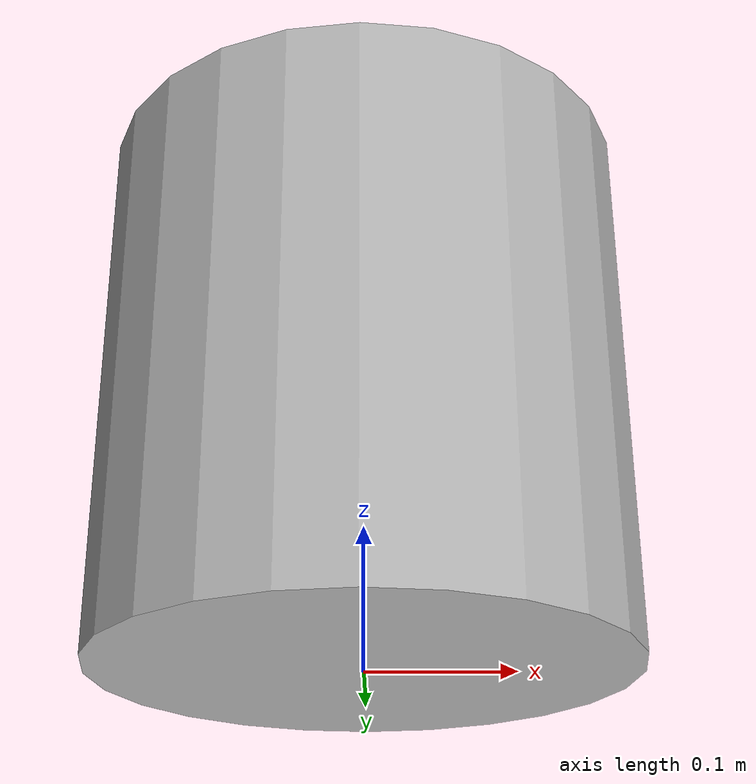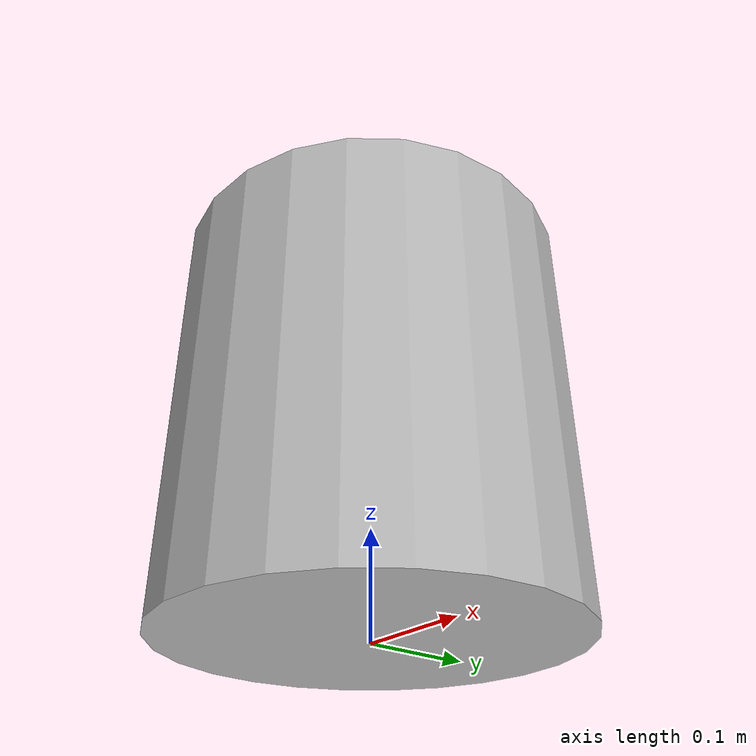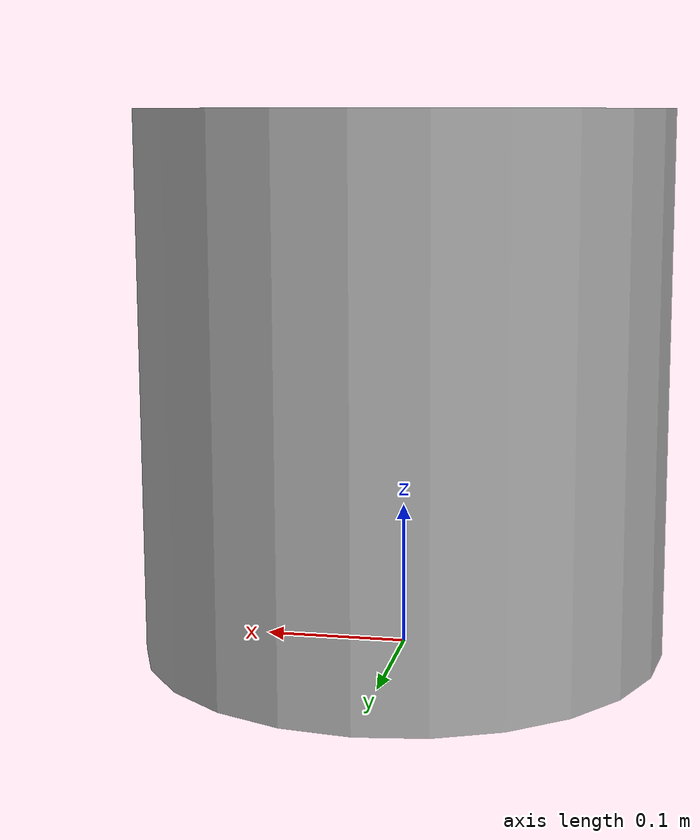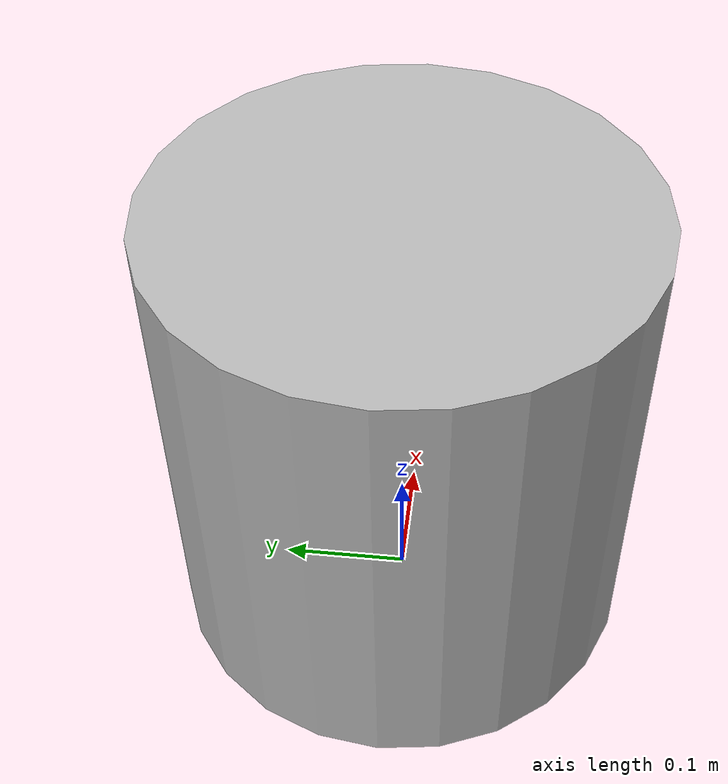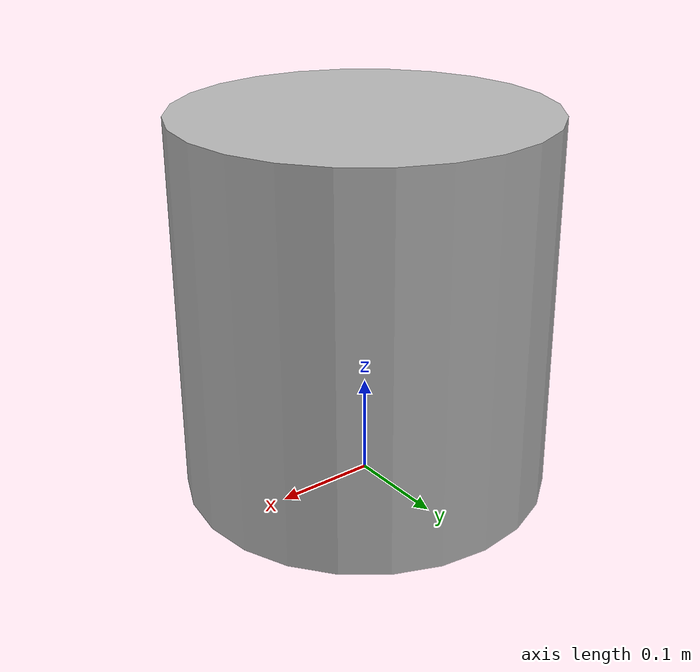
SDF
<?xml version="1.0"?>
<sdf version="1.6">
  <model name="rwc2016/plant">
    <link name="1_link">
      <collision name="1_col">
        <geometry>
          <cylinder>
            <length>0.376</length>
            <radius>0.1825</radius>
          </cylinder>
        </geometry>
      </collision>
      <visual name="1_vis">
        <geometry>
          <cylinder>
            <length>0.376</length>
            <radius>0.1825</radius>
          </cylinder>
        </geometry>
      </visual>
      <pose>0 0 0.188 0 0 0</pose>
    </link>
    <static>true</static>
  </model>
</sdf>
